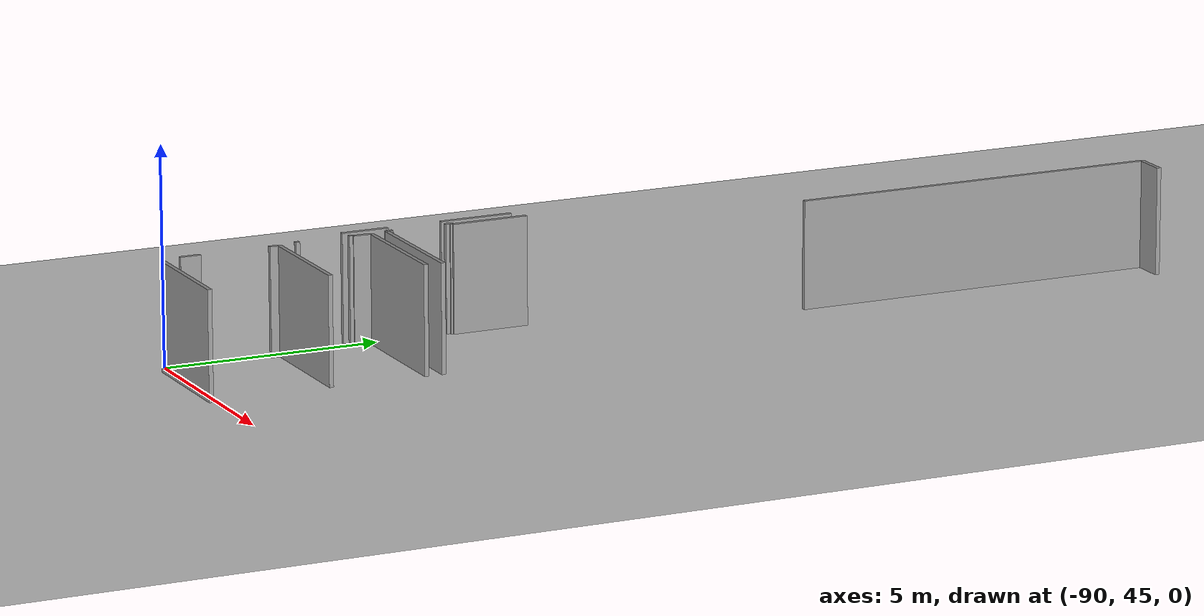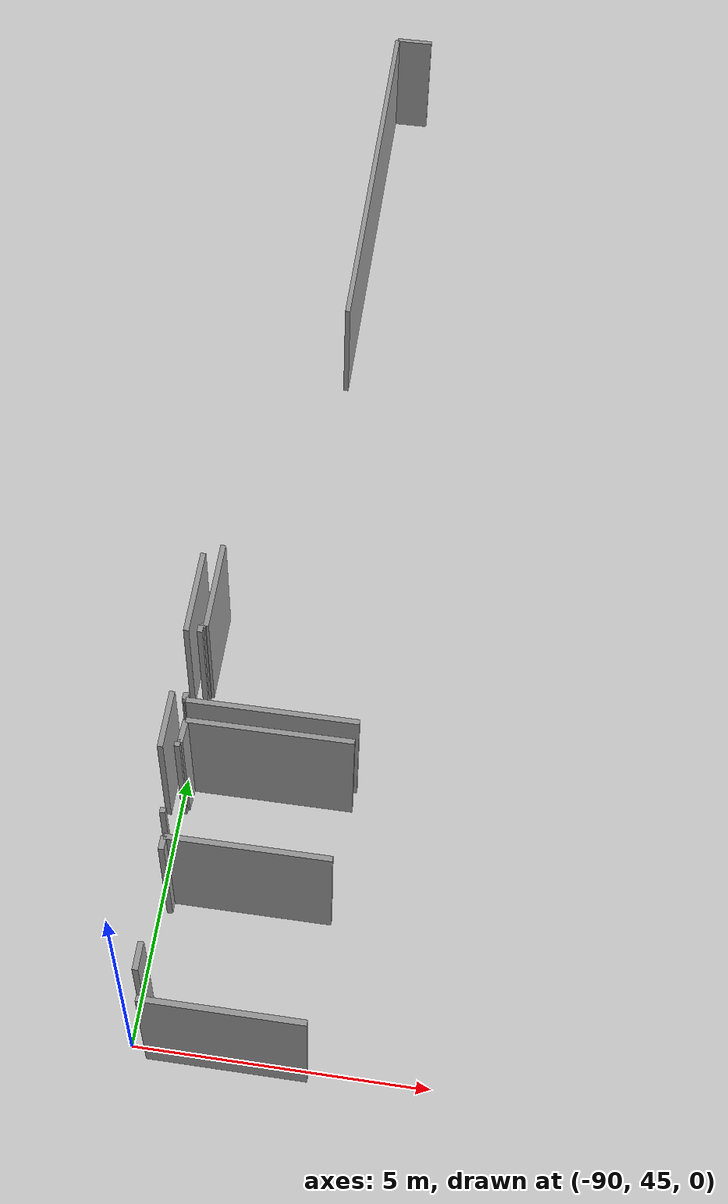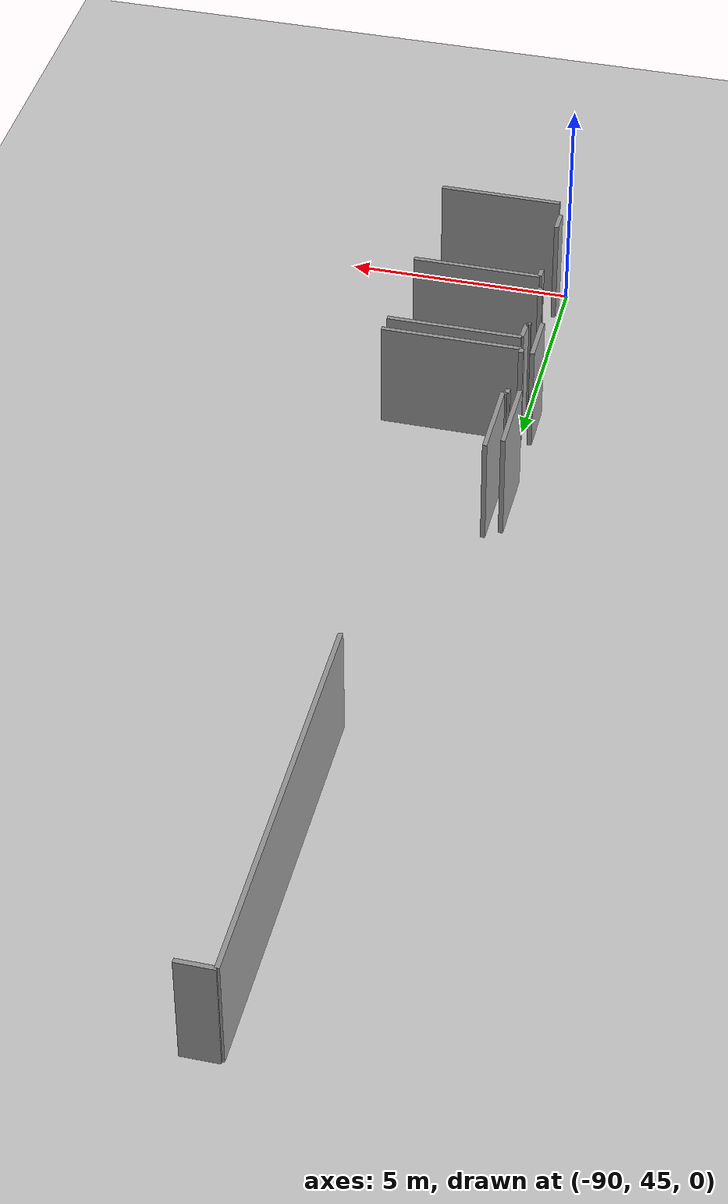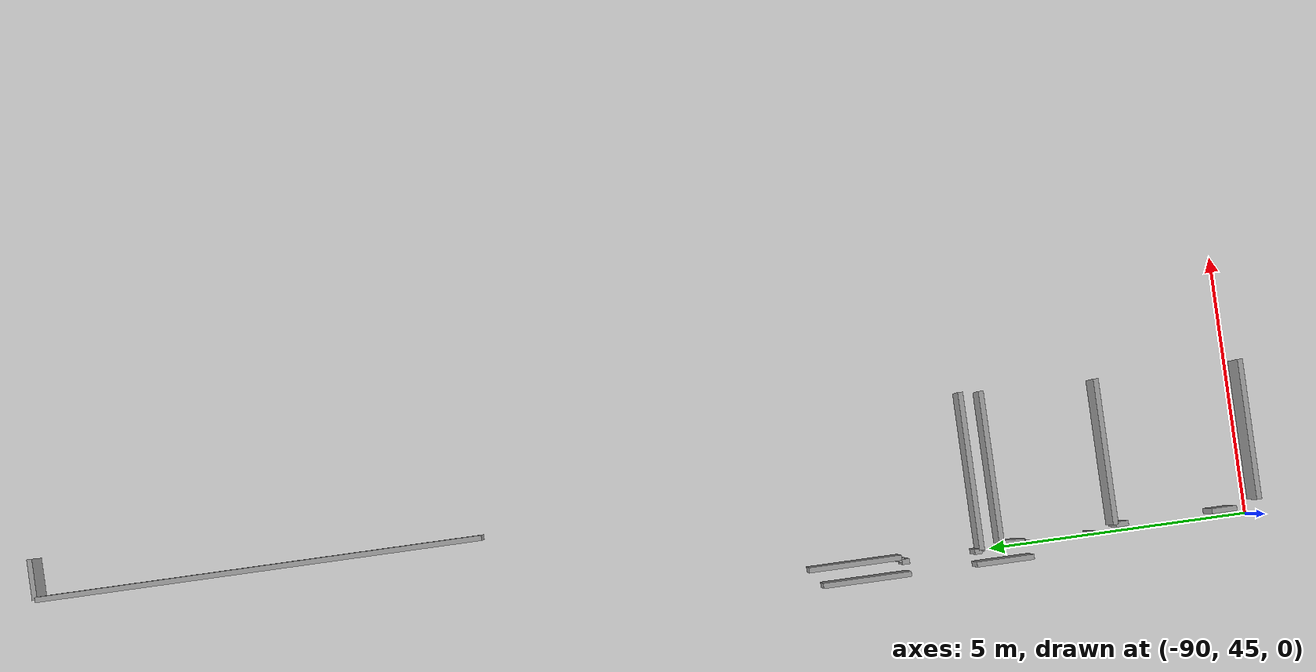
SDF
<sdf version="1.6">
 <world name="default">
  <model name="ground_plane">
   <static>1</static>
   <link name="link">
    <collision name="collision">
     <geometry><plane><normal>0 0 1</normal><size>100 100</size></plane></geometry>
     <surface><friction><ode><mu>100</mu><mu2>50</mu2></ode></friction></surface>
    </collision>
    <visual name="visual">
     <cast_shadows>0</cast_shadows>
     <geometry><plane><normal>0 0 1</normal><size>100 100</size></plane></geometry>
     <material>
      <script><uri>file://media/materials/scripts/gazebo.material</uri><name>Gazebo/Grey</name></script>
     </material>
    </visual>
   </link>
  </model>
  <model name="0510035519_A_40_1_102">
   <static>1</static>
   <link name="Wall_6">
    <collision name="Wall_6_Collision">
     <geometry><box><size>8.61456347693 0.1 2.5</size></box></geometry>
     <pose>4.30728173847 0 1.25 0 0 0</pose>
    </collision>
    <visual name="Wall_6_Visual">
     <pose>4.30728173847 0 1.25 0 0 0</pose>
     <geometry><box><size>8.61456347693 0.1 2.5</size></box></geometry>
     <material>
      <script><uri>file://media/materials/scripts/gazebo.material</uri><name>Gazebo/Grey</name></script>
      <ambient>1 1 1 1</ambient>
     </material>
    </visual>
    <pose>28.1840132164 -9.02173084255 0 0 0 1.57079632679</pose>
   </link>
   <link name="Wall_7">
    <collision name="Wall_7_Collision">
     <geometry><box><size>0.784597788791 0.1 2.5</size></box></geometry>
     <pose>0.392298894396 0 1.25 0 0 0</pose>
    </collision>
    <visual name="Wall_7_Visual">
     <pose>0.392298894396 0 1.25 0 0 0</pose>
     <geometry><box><size>0.784597788791 0.1 2.5</size></box></geometry>
     <material>
      <script><uri>file://media/materials/scripts/gazebo.material</uri><name>Gazebo/Grey</name></script>
      <ambient>1 1 1 1</ambient>
     </material>
    </visual>
    <pose>28.1840132164 -0.407167365612 0 0 0 0.0</pose>
   </link>
   <link name="Wall_70">
    <collision name="Wall_70_Collision">
     <geometry><box><size>3.04155547083 0.1 2.5</size></box></geometry>
     <pose>1.52077773542 0 1.25 0 0 0</pose>
    </collision>
    <visual name="Wall_70_Visual">
     <pose>1.52077773542 0 1.25 0 0 0</pose>
     <geometry><box><size>3.04155547083 0.1 2.5</size></box></geometry>
     <material>
      <script><uri>file://media/materials/scripts/gazebo.material</uri><name>Gazebo/Grey</name></script>
      <ambient>1 1 1 1</ambient>
     </material>
    </visual>
    <pose>26.6356589147 -18.4640996315 0 0 0 0.0</pose>
   </link>
   <link name="Wall_73">
    <collision name="Wall_73_Collision">
     <geometry><box><size>1.78065827932 0.1 2.5</size></box></geometry>
     <pose>0.890329139662 0 1.25 0 0 0</pose>
    </collision>
    <visual name="Wall_73_Visual">
     <pose>0.890329139662 0 1.25 0 0 0</pose>
     <geometry><box><size>1.78065827932 0.1 2.5</size></box></geometry>
     <material>
      <script><uri>file://media/materials/scripts/gazebo.material</uri><name>Gazebo/Grey</name></script>
      <ambient>1 1 1 1</ambient>
     </material>
    </visual>
    <pose>26.7025034947 -15.1386453171 0 0 0 -1.57079632679</pose>
   </link>
   <link name="Wall_74">
    <collision name="Wall_74_Collision">
     <geometry><box><size>0.0866692082857 0.1 2.5</size></box></geometry>
     <pose>0.0433346041428 0 1.25 0 0 0</pose>
    </collision>
    <visual name="Wall_74_Visual">
     <pose>0.0433346041428 0 1.25 0 0 0</pose>
     <geometry><box><size>0.0866692082857 0.1 2.5</size></box></geometry>
     <material>
      <script><uri>file://media/materials/scripts/gazebo.material</uri><name>Gazebo/Grey</name></script>
      <ambient>1 1 1 1</ambient>
     </material>
    </visual>
    <pose>26.7025034947 -16.9193035964 0 0 0 3.14159265359</pose>
   </link>
   <link name="Wall_75">
    <collision name="Wall_75_Collision">
     <geometry><box><size>0.143347312238 0.1 2.5</size></box></geometry>
     <pose>0.0716736561189 0 1.25 0 0 0</pose>
    </collision>
    <visual name="Wall_75_Visual">
     <pose>0.0716736561189 0 1.25 0 0 0</pose>
     <geometry><box><size>0.143347312238 0.1 2.5</size></box></geometry>
     <material>
      <script><uri>file://media/materials/scripts/gazebo.material</uri><name>Gazebo/Grey</name></script>
      <ambient>1 1 1 1</ambient>
     </material>
    </visual>
    <pose>26.6158342864 -16.9193035964 0 0 0 -1.57079632679</pose>
   </link>
   <link name="Wall_76">
    <collision name="Wall_76_Collision">
     <geometry><box><size>0.137247426611 0.1 2.5</size></box></geometry>
     <pose>0.0686237133054 0 1.25 0 0 0</pose>
    </collision>
    <visual name="Wall_76_Visual">
     <pose>0.0686237133054 0 1.25 0 0 0</pose>
     <geometry><box><size>0.137247426611 0.1 2.5</size></box></geometry>
     <material>
      <script><uri>file://media/materials/scripts/gazebo.material</uri><name>Gazebo/Grey</name></script>
      <ambient>1 1 1 1</ambient>
     </material>
    </visual>
    <pose>26.6158342864 -18.3217689668 0 0 0 -1.57079632679</pose>
   </link>
   <link name="Wall_77">
    <collision name="Wall_77_Collision">
     <geometry><box><size>0.0204659521049 0.1 2.5</size></box></geometry>
     <pose>0.0102329760525 0 1.25 0 0 0</pose>
    </collision>
    <visual name="Wall_77_Visual">
     <pose>0.0102329760525 0 1.25 0 0 0</pose>
     <geometry><box><size>0.0204659521049 0.1 2.5</size></box></geometry>
     <material>
      <script><uri>file://media/materials/scripts/gazebo.material</uri><name>Gazebo/Grey</name></script>
      <ambient>1 1 1 1</ambient>
     </material>
    </visual>
    <pose>26.6158342864 -18.4590163934 0 0 0 -0.251002686643</pose>
   </link>
   <link name="Wall_78">
    <collision name="Wall_78_Collision">
     <geometry><box><size>2.93328250095 0.1 2.5</size></box></geometry>
     <pose>1.46664125048 0 1.25 0 0 0</pose>
    </collision>
    <visual name="Wall_78_Visual">
     <pose>1.46664125048 0 1.25 0 0 0</pose>
     <geometry><box><size>2.93328250095 0.1 2.5</size></box></geometry>
     <material>
      <script><uri>file://media/materials/scripts/gazebo.material</uri><name>Gazebo/Grey</name></script>
      <ambient>1 1 1 1</ambient>
     </material>
    </visual>
    <pose>26.7103825137 -18.8562714449 0 0 0 0.0</pose>
   </link>
   <link name="Wall_81">
    <collision name="Wall_81_Collision">
     <geometry><box><size>0.0940399034185 0.1 2.5</size></box></geometry>
     <pose>0.0470199517092 0 1.25 0 0 0</pose>
    </collision>
    <visual name="Wall_81_Visual">
     <pose>0.0470199517092 0 1.25 0 0 0</pose>
     <geometry><box><size>0.0940399034185 0.1 2.5</size></box></geometry>
     <material>
      <script><uri>file://media/materials/scripts/gazebo.material</uri><name>Gazebo/Grey</name></script>
      <ambient>1 1 1 1</ambient>
     </material>
    </visual>
    <pose>26.6526877621 -20.6481128479 0 0 0 1.57079632679</pose>
   </link>
   <link name="Wall_82">
    <collision name="Wall_82_Collision">
     <geometry><box><size>0.0866692082857 0.1 2.5</size></box></geometry>
     <pose>0.0433346041428 0 1.25 0 0 0</pose>
    </collision>
    <visual name="Wall_82_Visual">
     <pose>0.0433346041428 0 1.25 0 0 0</pose>
     <geometry><box><size>0.0866692082857 0.1 2.5</size></box></geometry>
     <material>
      <script><uri>file://media/materials/scripts/gazebo.material</uri><name>Gazebo/Grey</name></script>
      <ambient>1 1 1 1</ambient>
     </material>
    </visual>
    <pose>26.6526877621 -19.3836573898 0 0 0 1.57079632679</pose>
   </link>
   <link name="Wall_83">
    <collision name="Wall_83_Collision">
     <geometry><box><size>0.0360909899606 0.1 2.5</size></box></geometry>
     <pose>0.0180454949803 0 1.25 0 0 0</pose>
    </collision>
    <visual name="Wall_83_Visual">
     <pose>0.0180454949803 0 1.25 0 0 0</pose>
     <geometry><box><size>0.0360909899606 0.1 2.5</size></box></geometry>
     <material>
      <script><uri>file://media/materials/scripts/gazebo.material</uri><name>Gazebo/Grey</name></script>
      <ambient>1 1 1 1</ambient>
     </material>
    </visual>
    <pose>26.6526877621 -19.2969881815 0 0 0 0.0</pose>
   </link>
   <link name="Wall_84">
    <collision name="Wall_84_Collision">
     <geometry><box><size>0.441245922814 0.1 2.5</size></box></geometry>
     <pose>0.220622961407 0 1.25 0 0 0</pose>
    </collision>
    <visual name="Wall_84_Visual">
     <pose>0.220622961407 0 1.25 0 0 0</pose>
     <geometry><box><size>0.441245922814 0.1 2.5</size></box></geometry>
     <material>
      <script><uri>file://media/materials/scripts/gazebo.material</uri><name>Gazebo/Grey</name></script>
      <ambient>1 1 1 1</ambient>
     </material>
    </visual>
    <pose>26.6887787521 -19.2969881815 0 0 0 1.52181592587</pose>
   </link>
   <link name="Wall_85">
    <collision name="Wall_85_Collision">
     <geometry><box><size>0.476807726522 0.1 2.5</size></box></geometry>
     <pose>0.238403863261 0 1.25 0 0 0</pose>
    </collision>
    <visual name="Wall_85_Visual">
     <pose>0.238403863261 0 1.25 0 0 0</pose>
     <geometry><box><size>0.476807726522 0.1 2.5</size></box></geometry>
     <material>
      <script><uri>file://media/materials/scripts/gazebo.material</uri><name>Gazebo/Grey</name></script>
      <ambient>1 1 1 1</ambient>
     </material>
    </visual>
    <pose>26.760960732 -23.3935697039 0 0 0 1.57079632679</pose>
   </link>
   <link name="Wall_86">
    <collision name="Wall_86_Collision">
     <geometry><box><size>0.240945482272 0.1 2.5</size></box></geometry>
     <pose>0.120472741136 0 1.25 0 0 0</pose>
    </collision>
    <visual name="Wall_86_Visual">
     <pose>0.120472741136 0 1.25 0 0 0</pose>
     <geometry><box><size>0.240945482272 0.1 2.5</size></box></geometry>
     <material>
      <script><uri>file://media/materials/scripts/gazebo.material</uri><name>Gazebo/Grey</name></script>
      <ambient>1 1 1 1</ambient>
     </material>
    </visual>
    <pose>26.760960732 -21.303342229 0 0 0 1.57079632679</pose>
   </link>
   <link name="Wall_87">
    <collision name="Wall_87_Collision">
     <geometry><box><size>2.81408056932 0.1 2.5</size></box></geometry>
     <pose>1.40704028466 0 1.25 0 0 0</pose>
    </collision>
    <visual name="Wall_87_Visual">
     <pose>1.40704028466 0 1.25 0 0 0</pose>
     <geometry><box><size>2.81408056932 0.1 2.5</size></box></geometry>
     <material>
      <script><uri>file://media/materials/scripts/gazebo.material</uri><name>Gazebo/Grey</name></script>
      <ambient>1 1 1 1</ambient>
     </material>
    </visual>
    <pose>26.760960732 -21.0623967467 0 0 0 0.0</pose>
   </link>
   <link name="Wall_90">
    <collision name="Wall_90_Collision">
     <geometry><box><size>2.70148684712 0.1 2.5</size></box></geometry>
     <pose>1.35074342356 0 1.25 0 0 0</pose>
    </collision>
    <visual name="Wall_90_Visual">
     <pose>1.35074342356 0 1.25 0 0 0</pose>
     <geometry><box><size>2.70148684712 0.1 2.5</size></box></geometry>
     <material>
      <script><uri>file://media/materials/scripts/gazebo.material</uri><name>Gazebo/Grey</name></script>
      <ambient>1 1 1 1</ambient>
     </material>
    </visual>
    <pose>26.8661837591 -23.8434362689 0 0 0 0.0</pose>
   </link>
   <link name="Wall_135">
    <collision name="Wall_135_Collision">
     <geometry><box><size>1.69780149956 0.1 2.5</size></box></geometry>
     <pose>0.848900749778 0 1.25 0 0 0</pose>
    </collision>
    <visual name="Wall_135_Visual">
     <pose>0.848900749778 0 1.25 0 0 0</pose>
     <geometry><box><size>1.69780149956 0.1 2.5</size></box></geometry>
     <material>
      <script><uri>file://media/materials/scripts/gazebo.material</uri><name>Gazebo/Grey</name></script>
      <ambient>1 1 1 1</ambient>
     </material>
    </visual>
    <pose>26.3698055661 -15.3681535138 0 0 0 -1.57079632679</pose>
   </link>
   <link name="Wall_136">
    <collision name="Wall_136_Collision">
     <geometry><box><size>1.1010293557 0.1 2.5</size></box></geometry>
     <pose>0.55051467785 0 1.25 0 0 0</pose>
    </collision>
    <visual name="Wall_136_Visual">
     <pose>0.55051467785 0 1.25 0 0 0</pose>
     <geometry><box><size>1.1010293557 0.1 2.5</size></box></geometry>
     <material>
      <script><uri>file://media/materials/scripts/gazebo.material</uri><name>Gazebo/Grey</name></script>
      <ambient>1 1 1 1</ambient>
     </material>
    </visual>
    <pose>26.3698055661 -18.3319354429 0 0 0 -1.57079632679</pose>
   </link>
   <pose>-116.6 68.721527513 0 0 0 0</pose>
  </model>
 </world>
</sdf>
